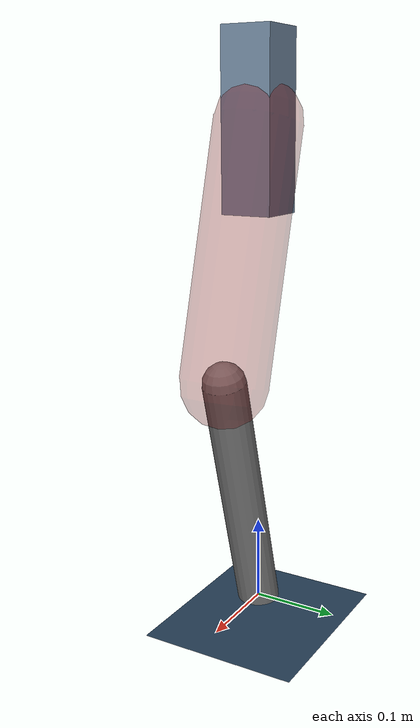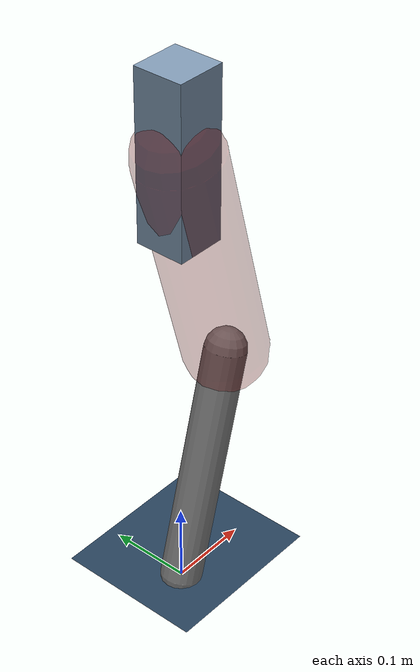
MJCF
<mujoco model="Hopper2D">
	<compiler inertiafromgeom="true" angle="radian" />
	<option timestep="0.001" integrator="implicit" cone="elliptic" solver="Newton" tolerance="1e-10" />

	<default>
		<geom contype="1" conaffinity="1" condim="3" friction="2 0.005 0.0001" solref="0.005 1" />
		<joint limited="true" damping="0.1" />
	</default>

	<asset>
		<texture name="skybox" type="skybox" builtin="gradient" rgb1=".4 .6 .8" rgb2="0 0 0" width="800" height="800" />
		<texture name="grid" type="2d" builtin="checker" rgb1=".1 .2 .3" rgb2=".2 .3 .4" width="300" height="300" mark="edge" markrgb=".2 .3 .4" />
		<material name="ground" texture="grid" texrepeat="1 1" texuniform="true" reflectance="0.1" />
		<material name="leg" rgba="0.5 0.6 0.7 1" />
	</asset>

	<worldbody>

		<geom name="floor" type="plane" size="5 5 0.25" material="ground" />

		<light directional="false" diffuse="0.8 0.8 0.8" specular="0.3 0.3 0.3" pos="0 0 2" dir="0 0 -1" />
		<light mode="targetbodycom" target="base" directional="false" diffuse="0.8 0.8 0.8" specular="0.3 0.3 0.3" pos="0 0 2" dir="0 0 -1" />

		<camera name="fixed" pos="0 -2 1" xyaxes="1 0 0 0 0 1" />
		<camera name="tracking" mode="trackcom" pos="0 -3 1" />

		<body name="root" pos="0 0 0.571099304205378">
			<joint name="slide_x" type="slide" axis="1 0 0" range="-100 100" />
			<joint name="slide_z" type="slide" axis="0 0 1" range="0 10" />

			<body name="base" pos="0 0 0">
				<geom name="torso" type="box" size="0.03 0.03 0.1" mass="2.197" material="leg" />

				<body name="link1" pos="0 0 0" euler="0 1.3007151077436248 0">
					<joint type="hinge" axis="0 -1 0" pos="0 0 0" name="hinge1" limited="true" range="-3.14 3.14" stiffness="0" damping="0.1" />
					<geom name="thigh" type="capsule" fromto="0 0 0 0.28936352830177114 0 0" size="0.05" rgba="0.5 0 0 0.3" mass="0.9600815264147821" />

					<body name="link2" pos="0.28936352830177114 0 0" euler="0 0.528376230839973 0">
						<joint type="hinge" axis="0 -1 0" pos="0 0 0" name="hinge2" limited="true" range="-3.14 3.14" stiffness="0" damping="0.1" />
						<geom name="shank" type="capsule" fromto="0 0 0 0.302252067039501 0 0" size="0.025" mass="0.4853016536316008" />

					</body>
				</body>
			</body>
		</body>
	</worldbody>

	<actuator>
		<motor name="torque1" joint="hinge1" ctrlrange="-33.7416254632631 33.7416254632631" ctrllimited="true" gear="1" />
		<motor name="torque2" joint="hinge2" ctrlrange="-26.125920299270643 26.125920299270643" ctrllimited="true" gear="1" />
	</actuator>
</mujoco>
